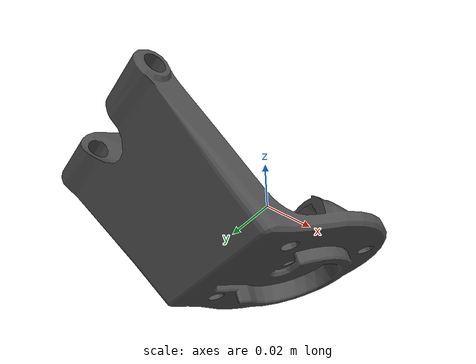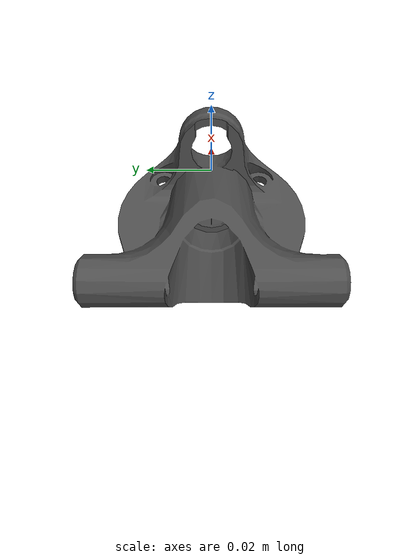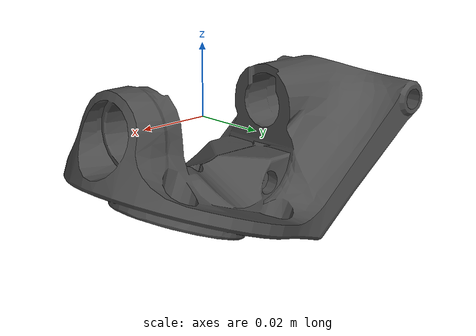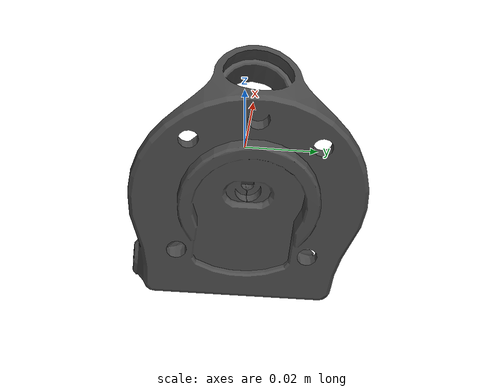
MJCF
<mujoco model="leg_ankle">
  <default>
    <default class="visual">
      <geom group="2" type="mesh" contype="0" conaffinity="0"/>
    </default>
    <default class="collision">
      <geom group="3" type="mesh"/>
    </default>
  </default>
  <asset>
    <material name="mtl_leg_ankle" specular="0.20000000000000004" shininess="1.0" rgba="0.29803922 0.29803922 0.29803922 1.0"/>
    <mesh file="leg_ankle.obj"/>
  </asset>
  <worldbody>
    <body name="leg_ankle">
      <geom material="mtl_leg_ankle" mesh="leg_ankle" class="visual"/>
      <geom mesh="leg_ankle" class="collision"/>
    </body>
  </worldbody>
</mujoco>
